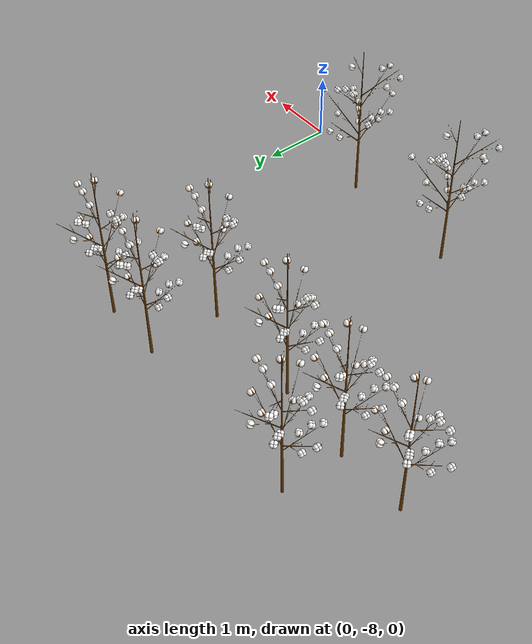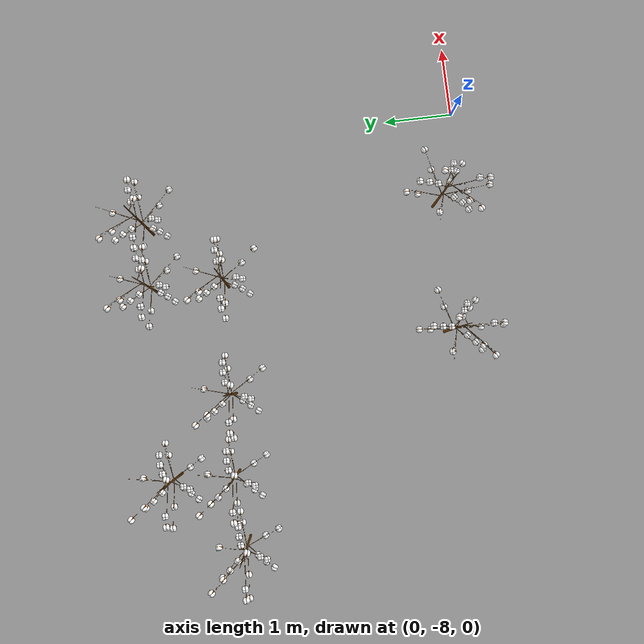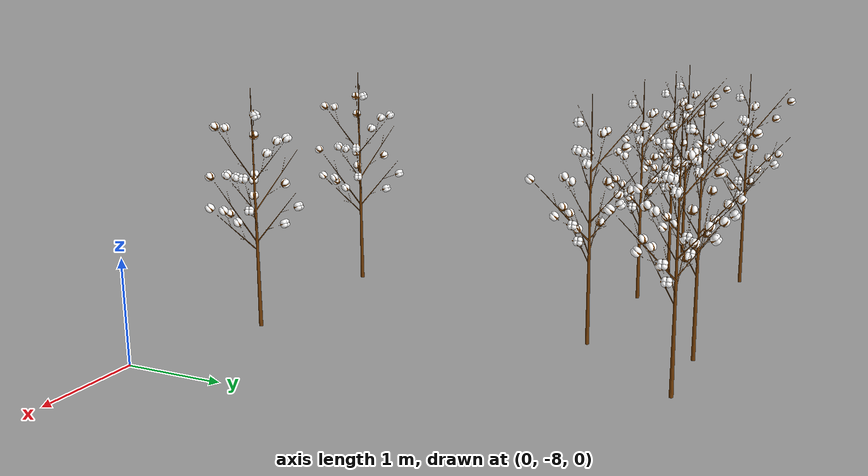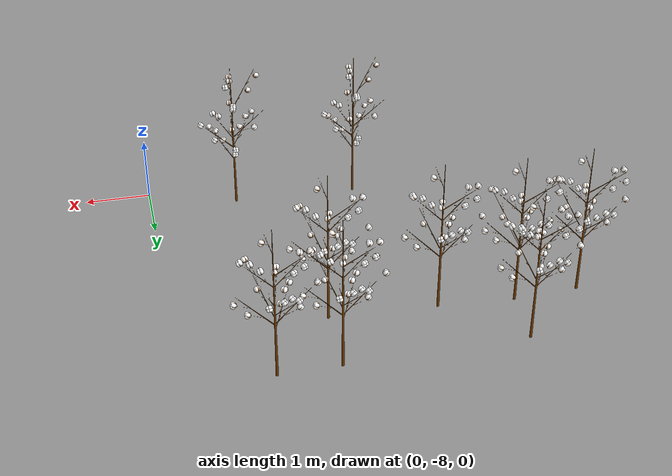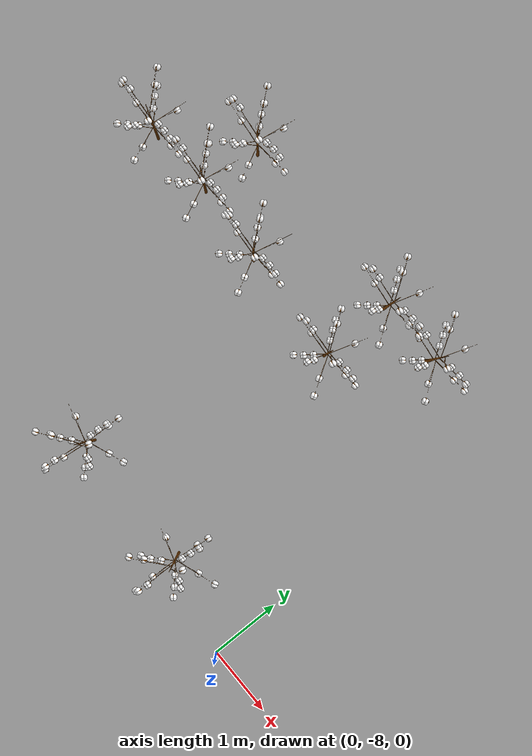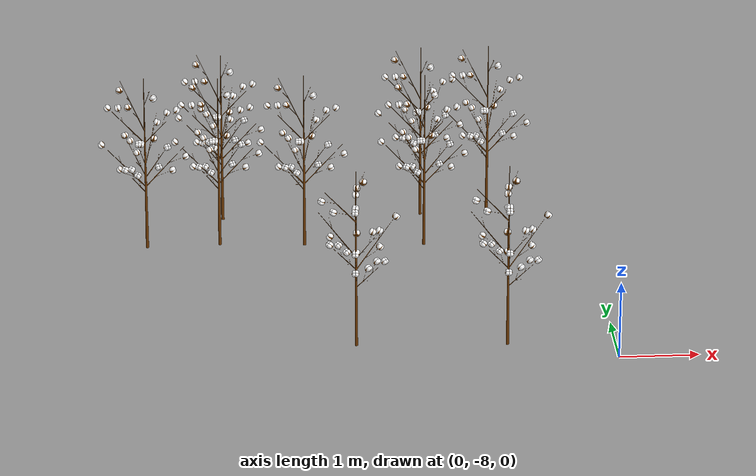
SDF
<sdf version="1.6">
 <world name="default">
  <model name="cotton">
   <link name="link">
    <collision name="collision">
     <geometry><mesh><scale>1 1 1</scale><uri>model://cotton/meshes/cotton.dae</uri></mesh></geometry>
    </collision>
    <inertial>
     <mass>1</mass>
     <inertia>
      <ixx>0.166667</ixx>
      <ixy>0</ixy>
      <ixz>0</ixz>
      <iyy>0.166667</iyy>
      <iyz>0</iyz>
      <izz>0.166667</izz>
     </inertia>
    </inertial>
    <visual name="visual">
     <geometry><mesh><scale>1 1 1</scale><uri>model://cotton/meshes/cotton.dae</uri></mesh></geometry>
    </visual>
    <velocity_decay><linear>0</linear><angular>0</angular></velocity_decay>
    <gravity>0</gravity>
   </link>
   <pose>-2.39067 -5 0 0 -0 0</pose>
   <static>1</static>
  </model>
  <model name="cotton_clone">
   <link name="link">
    <collision name="collision">
     <geometry><mesh><scale>1 1 1</scale><uri>model://cotton/meshes/cotton.dae</uri></mesh></geometry>
    </collision>
    <inertial>
     <mass>1</mass>
     <inertia>
      <ixx>0.166667</ixx>
      <ixy>0</ixy>
      <ixz>0</ixz>
      <iyy>0.166667</iyy>
      <iyz>0</iyz>
      <izz>0.166667</izz>
     </inertia>
    </inertial>
    <visual name="visual">
     <geometry><mesh><scale>1 1 1</scale><uri>model://cotton/meshes/cotton.dae</uri></mesh></geometry>
    </visual>
    <velocity_decay><linear>0</linear><angular>0</angular></velocity_decay>
    <gravity>0</gravity>
   </link>
   <pose>-2.251471 -4.062685 0 0 -0 1.5</pose>
   <static>1</static>
  </model>
  <model name="cotton_clone_0">
   <link name="link">
    <collision name="collision">
     <geometry><mesh><scale>1 1 1</scale><uri>model://cotton/meshes/cotton.dae</uri></mesh></geometry>
    </collision>
    <inertial>
     <mass>1</mass>
     <inertia>
      <ixx>0.166667</ixx>
      <ixy>0</ixy>
      <ixz>0</ixz>
      <iyy>0.166667</iyy>
      <iyz>0</iyz>
      <izz>0.166667</izz>
     </inertia>
    </inertial>
    <visual name="visual">
     <geometry><mesh><scale>1 1 1</scale><uri>model://cotton/meshes/cotton.dae</uri></mesh></geometry>
    </visual>
    <velocity_decay><linear>0</linear><angular>0</angular></velocity_decay>
    <gravity>0</gravity>
   </link>
   <pose>-1.427634 -4.955015 0 0 -0 0</pose>
   <static>1</static>
  </model>
  <model name="cotton_clone_1">
   <link name="link">
    <collision name="collision">
     <geometry><mesh><scale>1 1 1</scale><uri>model://cotton/meshes/cotton.dae</uri></mesh></geometry>
    </collision>
    <inertial>
     <mass>1</mass>
     <inertia>
      <ixx>0.166667</ixx>
      <ixy>0</ixy>
      <ixz>0</ixz>
      <iyy>0.166667</iyy>
      <iyz>0</iyz>
      <izz>0.166667</izz>
     </inertia>
    </inertial>
    <visual name="visual">
     <geometry><mesh><scale>1 1 1</scale><uri>model://cotton/meshes/cotton.dae</uri></mesh></geometry>
    </visual>
    <velocity_decay><linear>0</linear><angular>0</angular></velocity_decay>
    <gravity>0</gravity>
   </link>
   <pose>-1.374254 -4.105651 0 0 -0 0</pose>
   <static>1</static>
  </model>
  <model name="cotton_clone_1_clone">
   <link name="link">
    <collision name="collision">
     <geometry><mesh><scale>1 1 1</scale><uri>model://cotton/meshes/cotton.dae</uri></mesh></geometry>
    </collision>
    <inertial>
     <mass>1</mass>
     <inertia>
      <ixx>0.166667</ixx>
      <ixy>0</ixy>
      <ixz>0</ixz>
      <iyy>0.166667</iyy>
      <iyz>0</iyz>
      <izz>0.166667</izz>
     </inertia>
    </inertial>
    <visual name="visual">
     <geometry><mesh><scale>1 1 1</scale><uri>model://cotton/meshes/cotton.dae</uri></mesh></geometry>
    </visual>
    <velocity_decay><linear>0</linear><angular>0</angular></velocity_decay>
    <gravity>0</gravity>
   </link>
   <pose>-0.363088 -4.138568 0 0 -0 1.5</pose>
   <static>1</static>
  </model>
  <model name="cotton_clone_1_clone_0">
   <link name="link">
    <collision name="collision">
     <geometry><mesh><scale>1 1 1</scale><uri>model://cotton/meshes/cotton.dae</uri></mesh></geometry>
    </collision>
    <inertial>
     <mass>1</mass>
     <inertia>
      <ixx>0.166667</ixx>
      <ixy>0</ixy>
      <ixz>0</ixz>
      <iyy>0.166667</iyy>
      <iyz>0</iyz>
      <izz>0.166667</izz>
     </inertia>
    </inertial>
    <visual name="visual">
     <geometry><mesh><scale>1 1 1</scale><uri>model://cotton/meshes/cotton.dae</uri></mesh></geometry>
    </visual>
    <velocity_decay><linear>0</linear><angular>0</angular></velocity_decay>
    <gravity>0</gravity>
   </link>
   <pose>-0.304355 -5.03714 0 0 -0 0</pose>
   <static>1</static>
  </model>
  <model name="cotton_clone_1_clone_clone">
   <link name="link">
    <collision name="collision">
     <geometry><mesh><scale>1 1 1</scale><uri>model://cotton/meshes/cotton.dae</uri></mesh></geometry>
    </collision>
    <inertial>
     <mass>1</mass>
     <inertia>
      <ixx>0.166667</ixx>
      <ixy>0</ixy>
      <ixz>0</ixz>
      <iyy>0.166667</iyy>
      <iyz>0</iyz>
      <izz>0.166667</izz>
     </inertia>
    </inertial>
    <visual name="visual">
     <geometry><mesh><scale>1 1 1</scale><uri>model://cotton/meshes/cotton.dae</uri></mesh></geometry>
    </visual>
    <velocity_decay><linear>0</linear><angular>0</angular></velocity_decay>
    <gravity>0</gravity>
   </link>
   <pose>2.202172 -4.084283 0 0 -0 0</pose>
   <static>1</static>
  </model>
  <model name="cotton_clone_1_clone_clone_1">
   <link name="link">
    <collision name="collision">
     <geometry><mesh><scale>1 1 1</scale><uri>model://cotton/meshes/cotton.dae</uri></mesh></geometry>
    </collision>
    <inertial>
     <mass>1</mass>
     <inertia>
      <ixx>0.166667</ixx>
      <ixy>0</ixy>
      <ixz>0</ixz>
      <iyy>0.166667</iyy>
      <iyz>0</iyz>
      <izz>0.166667</izz>
     </inertia>
    </inertial>
    <visual name="visual">
     <geometry><mesh><scale>1 1 1</scale><uri>model://cotton/meshes/cotton.dae</uri></mesh></geometry>
    </visual>
    <velocity_decay><linear>0</linear><angular>0</angular></velocity_decay>
    <gravity>0</gravity>
   </link>
   <pose>1.299173 -4.088880 0 0 -0 0</pose>
   <static>1</static>
  </model>
  <model name="cotton_clone_1_clone_clone_2">
   <link name="link">
    <collision name="collision">
     <geometry><mesh><scale>1 1 1</scale><uri>model://cotton/meshes/cotton.dae</uri></mesh></geometry>
    </collision>
    <inertial>
     <mass>1</mass>
     <inertia>
      <ixx>0.166667</ixx>
      <ixy>0</ixy>
      <ixz>0</ixz>
      <iyy>0.166667</iyy>
      <iyz>0</iyz>
      <izz>0.166667</izz>
     </inertia>
    </inertial>
    <visual name="visual">
     <geometry><mesh><scale>1 1 1</scale><uri>model://cotton/meshes/cotton.dae</uri></mesh></geometry>
    </visual>
    <velocity_decay><linear>0</linear><angular>0</angular></velocity_decay>
    <gravity>0</gravity>
   </link>
   <pose>1.28207 -5.11188 0 0 -0 0</pose>
   <static>1</static>
  </model>
 </world>
</sdf>
